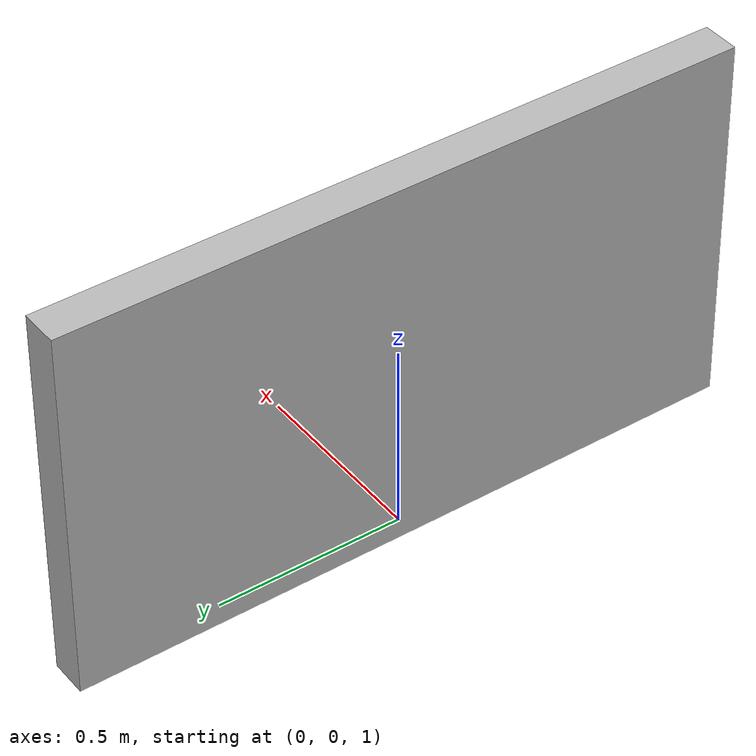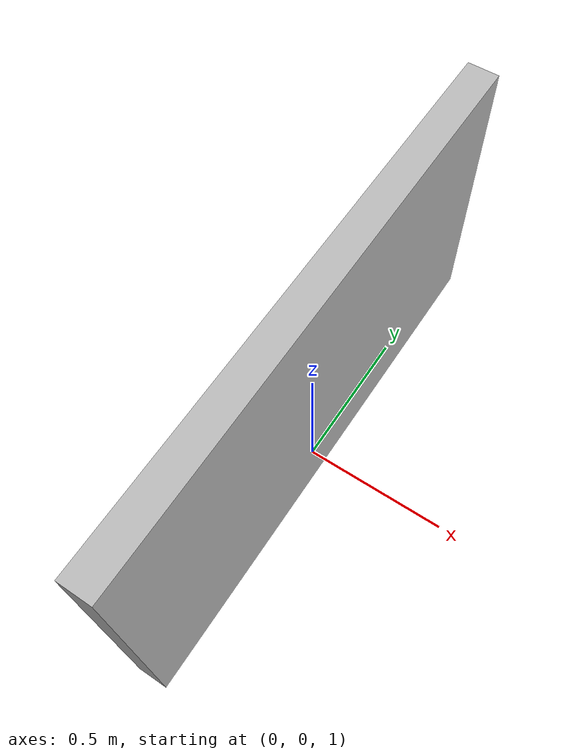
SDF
<?xml version="1.0" ?>
<sdf version="1.5">
  <model name="AIGC2_window_glass_half">
    <static>true</static>
    <link name="link">
      <pose>0 0 1.5 0 0 0</pose>
      <collision name="collision">
        <geometry>
          <box>
            <size>0.1 1.8 1.0</size>
          </box>
        </geometry>
      </collision>
      <visual name="visual">
        <cast_shadows>false</cast_shadows>
        <geometry>
          <box>
            <size>0.1 1.8 1.0</size>
          </box>
        </geometry>
        <material>
          <script>
            <uri>model://AIGC2_window_glass/materials/scripts</uri>
            <uri>model://AIGC2_window_glass/materials/textures</uri>
            <name>vrc/window</name>
          </script>
        </material>
      </visual>
    </link>
  </model>
</sdf>
